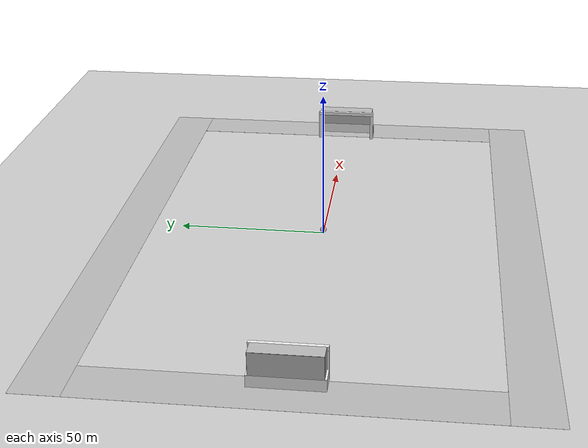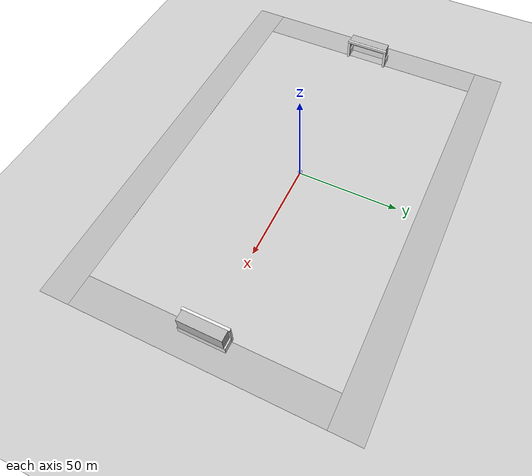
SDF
<sdf version="1.6">
  <world name="default">
  <plugin name="gazebo_ros_init" filename="libgazebo_ros_init.so"/>
  <plugin name="gazebo_ros_factory" filename="libgazebo_ros_factory.so"/>
  <plugin name="gazebo_ros_state" filename="libgazebo_ros_state.so"/>
  <include>
  <uri>model://MSL_models15/RoboCup15_MSL_Field</uri>
  <pose>0 0 0 0 0 0</pose> <!-- x y z roll pitch yaw -->
  </include>
  <include>
    <uri>model://MSL_models15/RoboCup15_MSL_Football</uri>
    <pose>0 0 0.11 0 0 0</pose> <!-- 0.11m so it sits on the ground -->
  </include>
      <!-- Goal 1 -->
    <include>
      <name>goal1</name>
      <uri>model://MSL_models15/RoboCup15_MSL_Goal</uri>
      <pose>90 0 0.0 0 0 0</pose>
    </include>

    <!-- Goal 2 -->
    <include>
      <name>goal2</name>
      <uri>model://MSL_models15/RoboCup15_MSL_Goal</uri>
      <pose>-90 0 0.0 0 0 3.14</pose>
    </include>
  </world>
</sdf>

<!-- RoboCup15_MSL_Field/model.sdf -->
<sdf version="1.4">
  <model name="RoboCup15_MSL_Field">
    <static>true</static>

    <link name="field">
      <pose>0 0 0.1 0 0 0</pose>

      <collision name="collision">
        <geometry>
          <plane>
            <normal>0 0 1</normal>
            <size>180 120</size>
          </plane>
        </geometry>
        <surface>
          <friction>
            <ode>
              <mu>100</mu>
              <mu2>50</mu2>
            </ode>
          </friction>
        </surface>
      </collision>

      <visual name="carpet">
        <cast_shadows>false</cast_shadows>
        <geometry>
          <plane>
            <normal>0 0 1</normal>
            <size>180 120</size>
          </plane>
        </geometry>
        <material>
          <script>
            <uri>model://MSL_models15/RoboCup15_MSL_Field/materials/scripts/</uri>
            <uri>model://MSL_models15/RoboCup15_MSL_Field/materials/textures/</uri>
            <name>RoboCup/Carpet</name>
          </script>
        </material>
      </visual>

      <visual name="base1">
        <pose>0 67.5 0.1 0 0 0</pose>
        <cast_shadows>false</cast_shadows>
        <geometry>
          <plane>
            <normal>0 0 1</normal>
            <size>210 15</size>
          </plane>
        </geometry>
        <material>
          <script>
            <uri>model://MSL_models15/RoboCup15_MSL_Field/materials/scripts/</uri>
            <uri>model://MSL_models15/RoboCup15_MSL_Field/materials/textures/</uri>
            <name>RoboCup/FieldBorder</name>
          </script>
        </material>
      </visual>

      <visual name="base2">
        <pose>0 -67.5 0.1 0 0 0</pose>
        <cast_shadows>false</cast_shadows>
        <geometry>
          <plane>
            <normal>0 0 1</normal>
            <size>210 15</size>
          </plane>
        </geometry>
        <material>
          <script>
            <uri>model://MSL_models15/RoboCup15_MSL_Field/materials/scripts/</uri>
            <uri>model://MSL_models15/RoboCup15_MSL_Field/materials/textures/</uri>
            <name>RoboCup/FieldBorder</name>
          </script>
        </material>
      </visual>

      <visual name="base3">
        <pose>97.5 0 0.1 0 0 0</pose>
        <cast_shadows>false</cast_shadows>
        <geometry>
          <plane>
            <normal>0 0 1</normal>
            <size>15 120</size>
          </plane>
        </geometry>
        <material>
          <script>
            <uri>model://MSL_models15/RoboCup15_MSL_Field/materials/scripts/</uri>
            <uri>model://MSL_models15/RoboCup15_MSL_Field/materials/textures/</uri>
            <name>RoboCup/FieldBorder</name>
          </script>
        </material>
      </visual>

      <visual name="base4">
        <pose>-97.5 0 0.1 0 0 0</pose>
        <cast_shadows>false</cast_shadows>
        <geometry>
          <plane>
            <normal>0 0 1</normal>
            <size>15 120</size>
          </plane>
        </geometry>
        <material>
          <script>
            <uri>model://MSL_models15/RoboCup15_MSL_Field/materials/scripts/</uri>
            <uri>model://MSL_models15/RoboCup15_MSL_Field/materials/textures/</uri>
            <name>RoboCup/FieldBorder</name>
          </script>
        </material>
      </visual>

    </link>
  </model>
</sdf>

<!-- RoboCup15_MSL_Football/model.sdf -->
<sdf version='1.4'>
<!-- mass 0.41kg  -->
<!-- inertia 3.2e-03kg m^2 -->

<model name='football'>
      <static>0</static>
      <link name='ball'>
        <pose>0 0 1.1 0 -0 0</pose>
        <inertial>
          <mass>0.41</mass>
          <inertia>
            <ixx>3.2e-03</ixx>
            <iyy>3.2e-03</iyy>
            <izz>3.2e-03</izz>
            <ixy>0</ixy>
            <ixz>0</ixz>
            <iyz>0</iyz>
          </inertia>
        </inertial>
        <collision name='collision'>
          <geometry>
            <sphere>
              <radius>1.1</radius>
            </sphere>
          </geometry>
          <surface>
            <bounce>
              <restitution_coefficient>1</restitution_coefficient>
            </bounce>
            <friction>
              <ode>
                <mu>1</mu>
                <mu2>1</mu2>
              </ode>
            </friction>
            <contact>
              <ode/>
            </contact>
          </surface>
        </collision>
        <visual name='visual'>
          <geometry>
            <mesh>
              <scale>1.1 1.1 1.1</scale>
              <uri>meshes/ball.dae</uri>
            </mesh>
          </geometry>
        </visual>
        <velocity_decay>
          <linear>0.005</linear>
          <angular>0.005</angular>
        </velocity_decay>
        <gravity>1</gravity>
      </link>
      <pose>0 0 0 0 -0 0</pose>
    </model>
</sdf>

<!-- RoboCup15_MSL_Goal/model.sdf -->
<sdf version="1.4">
  <model name="RoboCup15_MSL_Goal">
    <static>true</static>

    <link name="left_post">
      <pose>-0.625 10.625 5.0 0 0 0</pose>
      <collision name="collision">
        <geometry><box><size>1.25 1.25 10.0</size></box></geometry>
      </collision>
      <visual name="visual">
        <geometry><box><size>1.25 1.25 10.0</size></box></geometry>
        <material><script><uri>model://MSL_models15/RoboCup15_MSL_Goal/materials/scripts/gazebo.material</uri><name>Gazebo/White</name></script></material>
      </visual>
    </link>

    <link name="right_post">
      <pose>-0.625 -10.625 5.0 0 0 0</pose>
      <collision name="collision">
        <geometry><box><size>1.25 1.25 10.0</size></box></geometry>
      </collision>
      <visual name="visual">
        <geometry><box><size>1.25 1.25 10.0</size></box></geometry>
        <material><script><uri>model://MSL_models15/RoboCup15_MSL_Goal/materials/scripts/gazebo.material</uri><name>Gazebo/White</name></script></material>
      </visual>
    </link>

    <link name="crossbar">
      <pose>-0.625 0 10.625 0 0 0</pose>
      <collision name="collision">
        <geometry><box><size>1.25 22.5 1.25</size></box></geometry>
      </collision>
      <visual name="visual">
        <geometry><box><size>1.25 22.5 1.25</size></box></geometry>
        <material><script><uri>model://MSL_models15/RoboCup15_MSL_Goal/materials/scripts/gazebo.material</uri><name>Gazebo/White</name></script></material>
      </visual>
    </link>

    <link name="left_support_horiz_lower">
      <pose>2.5 10.625 2.0 0 0 0</pose>
      <collision name="collision">
        <geometry><box><size>5.0 1.25 4.0</size></box></geometry>
      </collision>
      <visual name="visual">
        <geometry><box><size>5.0 1.25 4.0</size></box></geometry>
        <material><script><uri>model://MSL_models15/RoboCup15_MSL_Goal/materials/scripts/gazebo.material</uri><name>Gazebo/White</name></script></material>
      </visual>
    </link>

    <link name="right_support_horiz_lower">
      <pose>2.5 -10.625 2.0 0 0 0</pose>
      <collision name="collision">
        <geometry><box><size>5.0 1.25 4.0</size></box></geometry>
      </collision>
      <visual name="visual">
        <geometry><box><size>5.0 1.25 4.0</size></box></geometry>
        <material><script><uri>model://MSL_models15/RoboCup15_MSL_Goal/materials/scripts/gazebo.material</uri><name>Gazebo/White</name></script></material>
      </visual>
    </link>

    <link name="center_support_horiz_lower">
      <pose>5.1 0 2.0 0 0 0</pose>
      <collision name="collision">
        <geometry><box><size>0.2 22.5 4.0</size></box></geometry>
      </collision>
      <visual name="visual">
        <geometry><box><size>0.2 22.5 4.0</size></box></geometry>
        <material><script><uri>model://MSL_models15/RoboCup15_MSL_Goal/materials/scripts/gazebo.material</uri><name>Gazebo/White</name></script></material>
      </visual>
    </link>

    <link name="center_net">
      <pose>5.0 0 7.625 0 0 0</pose>
      <collision name="collision">
        <geometry><box><size>0.1 21.25 7.25</size></box></geometry>
      </collision>
      <visual name="visual">
        <geometry><box><size>0.1 21.25 7.25</size></box></geometry>
        <material>
          <script>
            <uri>model://MSL_models15/RoboCup15_MSL_Goal/materials/scripts/</uri>
            <uri>model://MSL_models15/RoboCup15_MSL_Goal/materials/textures/</uri>
            <name>RoboCup/Net</name>
          </script>
        </material>
      </visual>
    </link>

    <link name="left_net">
      <pose>2.5 10.625 7.625 0 0 0</pose>
      <collision name="collision">
        <geometry><box><size>5.0 0.1 7.25</size></box></geometry>
      </collision>
      <visual name="visual">
        <geometry><box><size>5.0 0.1 7.25</size></box></geometry>
        <material>
          <script>
            <uri>model://MSL_models15/RoboCup15_MSL_Goal/materials/scripts/</uri>
            <uri>model://MSL_models15/RoboCup15_MSL_Goal/materials/textures/</uri>
            <name>RoboCup/Net</name>
          </script>
        </material>
      </visual>
    </link>

    <link name="right_net">
      <pose>2.5 -10.625 7.625 0 0 0</pose>
      <collision name="collision">
        <geometry><box><size>5.0 0.1 7.25</size></box></geometry>
      </collision>
      <visual name="visual">
        <geometry><box><size>5.0 0.1 7.25</size></box></geometry>
        <material>
          <script>
            <uri>model://MSL_models15/RoboCup15_MSL_Goal/materials/scripts/</uri>
            <uri>model://MSL_models15/RoboCup15_MSL_Goal/materials/textures/</uri>
            <name>RoboCup/Net</name>
          </script>
        </material>
      </visual>
    </link>

    <link name="upper_net">
      <pose>2.5 0 11.25 0 0 0</pose>
      <collision name="collision">
        <geometry><box><size>5.0 21.25 0.1</size></box></geometry>
      </collision>
      <visual name="visual">
        <geometry><box><size>5.0 21.25 0.1</size></box></geometry>
        <material>
          <script>
            <uri>model://MSL_models15/RoboCup15_MSL_Goal/materials/scripts/</uri>
            <uri>model://MSL_models15/RoboCup15_MSL_Goal/materials/textures/</uri>
            <name>RoboCup/Net</name>
          </script>
        </material>
      </visual>
    </link>

  </model>
</sdf>
